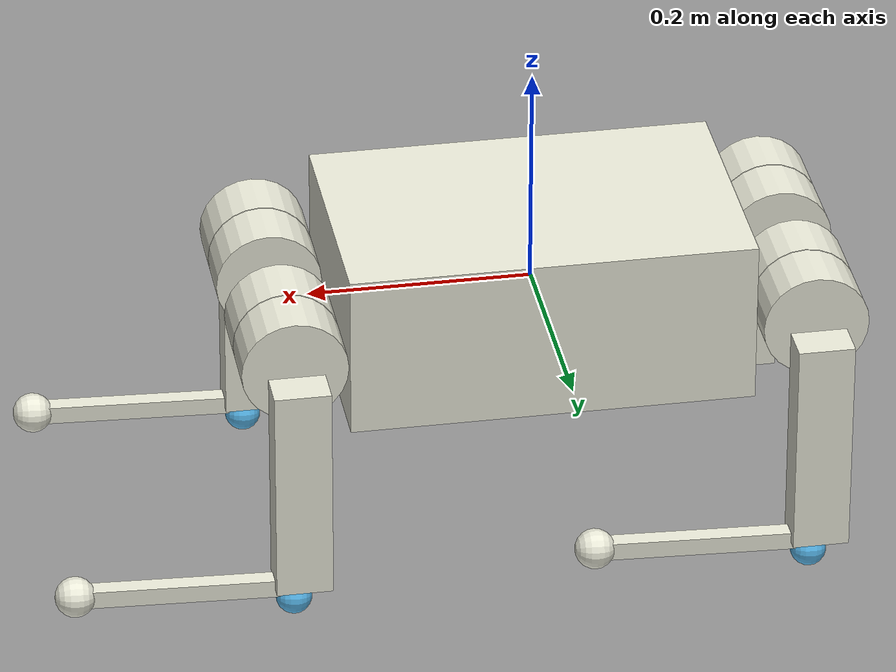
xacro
<?xml version="1.0"?>
<robot name="cyberdog_description" xmlns:xacro="http://www.ros.org/wiki/xacro">

    <xacro:arg name="ROBOT" default="cyberdog_description" />
    <xacro:arg name="USE_LIDAR" default="false" />
    <xacro:include filename="const.xacro" />
    <xacro:include filename="leg.xacro" />
    <xacro:include filename="gazebo.xacro" />

    <material name="black">
        <color rgba="0.0 0.0 0.0 1.0"/>
    </material>
    <material name="blue">
        <color rgba="0.0 0.0 0.8 1.0"/>
    </material>
    <material name="green">
        <color rgba="0.0 0.8 0.0 1.0"/>
    </material>
    <material name="grey">
        <color rgba="0.2 0.2 0.2 1.0"/>
    </material>
    <material name="silver">
        <color rgba="0.913725490196 0.913725490196 0.847058823529 1.0"/>
    </material>
    <material name="orange">
        <color rgba="0.12 0.15 0.2 1.0"/>
    </material>
    <material name="brown">
        <color rgba="0.870588235294 0.811764705882 0.764705882353 1.0"/>
    </material>
    <material name="red">
        <color rgba="0.8 0.0 0.0 1.0"/>
    </material>
    <material name="white">
        <color rgba="1.0 1.0 1.0 1.0"/>
    </material>

    <link name="base">
        <visual>
            <origin rpy="0 0 0" xyz="0 0 0" />
            <geometry>
                <box size="0.001 0.001 0.001" />
            </geometry>
        </visual>
    </link>

    <joint name="floating_base" type="fixed">
        <origin rpy="0 0 0" xyz="0 0 0" />
        <parent link="base" />
        <child link="trunk" />
    </joint>

    <link name="trunk">
        <visual>
            <origin rpy="0 0 0" xyz="0 0 0" />
            <geometry>
                <box size="${body_length} ${body_width} ${body_height}" />
            </geometry>
            <material name="silver" />
        </visual>
        <collision>
            <origin rpy="0 0 0" xyz="0 0 0" />
            <geometry>
                <box size="${body_length} ${body_width} ${body_height}" />
            </geometry>
        </collision>
        <inertial>
            <origin rpy="0 0 0" xyz="${body_com_x} ${body_com_y} ${body_com_z}" />
            <mass value="${body_mass}" />
            <inertia ixx="${body_ixx}" ixy="${body_ixy}" ixz="${body_ixz}" iyy="${body_iyy}" iyz="${body_iyz}" izz="${body_izz}" />
        </inertial>
    </link>

    <joint name="imu_joint" type="fixed">
        <parent link="trunk" />
        <child link="imu_link" />
        <origin rpy="0 0 0" xyz="0 0 0" />
    </joint>

    <link name="imu_link">
        <inertial>
            <mass value="0.001" />
            <origin rpy="0 0 0" xyz="0 0 0" />
            <inertia ixx="0.0001" ixy="0" ixz="0" iyy="0.0001" iyz="0" izz="0.0001" />
        </inertial>
        <visual>
            <origin rpy="0 0 0" xyz="0 0 0" />
            <geometry>
                <box size="0.001 0.001 0.001" />
            </geometry>
            <material name="red"/>
        </visual>
    </link>

    <xacro:leg name="FR" mirror="-1" mirror_dae="False" front_hind="1" front_hind_dae="True">
        <origin rpy="0 0 0" xyz="${abad_offset_x} ${-abad_offset_y} 0" />
    </xacro:leg>

    <xacro:leg name="FL" mirror="1" mirror_dae="True" front_hind="1" front_hind_dae="True">
        <origin rpy="0 0 0" xyz="${abad_offset_x} ${abad_offset_y} 0" />
    </xacro:leg>

    <xacro:leg name="RR" mirror="-1" mirror_dae="False" front_hind="-1" front_hind_dae="False">
        <origin rpy="0 0 0" xyz="${-abad_offset_x} ${-abad_offset_y} 0" />
    </xacro:leg>

    <xacro:leg name="RL" mirror="1" mirror_dae="True" front_hind="-1" front_hind_dae="False">
        <origin rpy="0 0 0" xyz="${-abad_offset_x} ${abad_offset_y} 0" />
    </xacro:leg>

</robot>

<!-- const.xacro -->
<robot xmlns:xacro="http://www.ros.org/wiki/xacro">

    <xacro:property name="PI" value="3.1415926535897931" />

    <!-- dimension -->
    <!-- body -->
    <xacro:property name="body_width" value="0.23" />
    <xacro:property name="body_length" value="0.36" />
    <xacro:property name="body_height" value="0.15" />

    <!-- abad -->
    <xacro:property name="abad_radius" value="0.047" />
    <xacro:property name="abad_length" value="0.052" />
    <xacro:property name="abad_offset_x" value="0.23035" />
    <xacro:property name="abad_offset_y" value="0.05" />
    <xacro:property name="abad_rotor_offset" value="0.0832504" />
    <xacro:property name="abad_max" value="0.76096355387" />
    <xacro:property name="abad_min" value="-0.76096355387" />

    <!-- hip -->
    <xacro:property name="hip_shoulder_radius" value="0.047" />
    <xacro:property name="hip_shoulder_length" value="0.052" />
    <xacro:property name="hip_width" value="0.035" />
    <xacro:property name="hip_height" value="0.050" />
    <xacro:property name="hip_offset" value="0.105076" />
    <xacro:property name="hip_length" value="0.2" />
    <xacro:property name="hip_rotor_offset" value="-0.107226" />
    <xacro:property name="hip_f_max" value="3.76991118431" />
    <xacro:property name="hip_f_min" value="-1.88495559215" />
    <xacro:property name="hip_h_max" value="3.76991118431" />
    <xacro:property name="hip_h_min" value="-1.88495559215" />

    <!-- knee -->
    <xacro:property name="knee_width" value="0.016" />
    <xacro:property name="knee_height" value="0.016" />
    <xacro:property name="knee_length" value="0.209" />
    <xacro:property name="knee_rotor_offset" value="-0.0426259" />
    <xacro:property name="knee_max" value="-0.717155789644" />
    <xacro:property name="knee_min" value="-2.49582083035" />
    <xacro:property name="knee_rubber" value="0.025" />

    <!-- foot -->
    <xacro:property name="foot_radius" value="0.018" />

    <!-- acuator atribute -->
    <xacro:property name="abadGearRatio" value="1" />
    <xacro:property name="hipGearRatio" value="1" />
    <xacro:property name="kneeGearRatio" value="1" />
    <xacro:property name="abad_motorTauMax" value="24" />
    <xacro:property name="hip_motorTauMax" value="24" />
    <xacro:property name="knee_motorTauMax" value="24" />
    <xacro:property name="abad_motorVelMax" value="31" />
    <xacro:property name="hip_motorVelMax" value="31" />
    <xacro:property name="knee_motorVelMax" value="31" />
    <xacro:property name="abad_damping" value="0" />
    <xacro:property name="hip_damping" value="0" />
    <xacro:property name="knee_damping" value="0" />
    <xacro:property name="abad_friction" value="0" />
    <xacro:property name="hip_friction" value="0" />
    <xacro:property name="knee_friction" value="0" />

    <!-- inertial&mass value -->
    <!-- body -->
    <xacro:property name="body_mass" value="6.248410872" />
    <xacro:property name="body_com_x" value="0.018785003" />
    <xacro:property name="body_com_y" value="0.003291012" />
    <xacro:property name="body_com_z" value="-0.000925646" />
    <xacro:property name="body_ixx" value="0.032143039" />
    <xacro:property name="body_ixy" value="-0.000268204" />
    <xacro:property name="body_ixz" value="-0.00241341" />
    <xacro:property name="body_iyy" value="0.13578316" />
    <xacro:property name="body_iyz" value="0.000080244" />
    <xacro:property name="body_izz" value="0.14828095" />

    <!-- abad -->
    <xacro:property name="abad_mass" value="0.537806728" />
    <xacro:property name="abad_com_x" value="-0.001597914" />
    <xacro:property name="abad_com_y" value="0.001680938" />
    <xacro:property name="abad_com_z" value="0.000002253" />
    <xacro:property name="abad_ixx" value="0.000403612" />
    <xacro:property name="abad_ixy" value="-0.000009337" />
    <xacro:property name="abad_ixz" value="0.000000536" />
    <xacro:property name="abad_iyy" value="0.000600779" />
    <xacro:property name="abad_iyz" value="-0.000000063" />
    <xacro:property name="abad_izz" value="0.000417249" />

    <!-- hip -->
    <xacro:property name="hip_mass" value="0.950266218" />
    <xacro:property name="hip_com_x" value="-0.003205778" />
    <xacro:property name="hip_com_y" value="-0.027811623" />
    <xacro:property name="hip_com_z" value="-0.027767048" />
    <xacro:property name="hip_ixx" value="0.004811898" />
    <xacro:property name="hip_ixy" value="0.000093647" />
    <xacro:property name="hip_ixz" value="-0.000208709" />
    <xacro:property name="hip_iyy" value="0.004752366" />
    <xacro:property name="hip_iyz" value="0.000813258" />
    <xacro:property name="hip_izz" value="0.001079691" />

    <!-- knee -->
    <xacro:property name="knee_mass" value="0.1135916" />
    <xacro:property name="knee_com_x" value="0.007372358" />
    <xacro:property name="knee_com_y" value="0.000122423" />
    <xacro:property name="knee_com_z" value="-0.10769301" />
    <xacro:property name="knee_ixx" value="0.000667971" />
    <xacro:property name="knee_ixy" value="-0.000000001" />
    <xacro:property name="knee_ixz" value="0.000005356" />
    <xacro:property name="knee_iyy" value="0.000674399" />
    <xacro:property name="knee_iyz" value="-0.000000015" />
    <xacro:property name="knee_izz" value="0.000014181" />

    <!-- rotor -->
    <xacro:property name="rotor_mass" value="0.076506382" />
    <xacro:property name="rotor_com_x" value="0" />
    <xacro:property name="rotor_com_y" value="0" />
    <xacro:property name="rotor_com_z" value="0" />
    <xacro:property name="rotor_ixx" value="0.000045843" />
    <xacro:property name="rotor_ixy" value="0" />
    <xacro:property name="rotor_ixz" value="0" />
    <xacro:property name="rotor_iyy" value="0.000045871" />
    <xacro:property name="rotor_iyz" value="0" />
    <xacro:property name="rotor_izz" value="0.000089031" />
</robot>

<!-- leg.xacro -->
<robot xmlns:xacro="http://www.ros.org/wiki/xacro">

    <xacro:include filename="../xacro/transmission.xacro" />

    <xacro:macro name="leg" params="name mirror mirror_dae front_hind front_hind_dae *origin">

        <joint name="${name}_hip_joint" type="revolute">
            <xacro:insert_block name="origin" />
            <parent link="trunk" />
            <child link="${name}_hip" />
            <axis xyz="1 0 0" />
            <dynamics damping="${abad_damping}" friction="${abad_friction}" />
            <xacro:if value="${(mirror_dae == True)}">
                <limit effort="${abad_motorTauMax*abadGearRatio}"
                    velocity="${abad_motorVelMax}" lower="${abad_min}"
                    upper="${abad_max}" />
            </xacro:if>
            <xacro:if value="${(mirror_dae == False)}">
                <limit effort="${abad_motorTauMax*abadGearRatio}"
                    velocity="${abad_motorVelMax}" lower="${-abad_max}"
                    upper="${-abad_min}" />
            </xacro:if>
        </joint>

        <link name="${name}_hip">
            <visual>
                <origin rpy="${PI/2.0} 0 0" xyz="0 0 0" />
                <geometry>
                    <cylinder length="${abad_length}" radius="${abad_radius}" />
                </geometry>
                <material name="silver" />
            </visual>
            <collision>
                <origin rpy="${PI/2.0} 0 0" xyz="0 0 0" />
                <geometry>
                    <cylinder length="${abad_length}" radius="${abad_radius}" />
                </geometry>
            </collision>
            <inertial>
                <origin rpy="0 0 0"
                    xyz="${abad_com_x*front_hind} ${abad_com_y*mirror} ${abad_com_z}" />
                <mass value="${abad_mass}" />
                <inertia ixx="${abad_ixx}" ixy="${abad_ixy*mirror*front_hind}"
                    ixz="${abad_ixz*front_hind}" iyy="${abad_iyy}" iyz="${abad_iyz*mirror}"
                    izz="${abad_izz}" />
            </inertial>
        </link>

        <joint name="${name}_hip_rotor_fix" type="fixed" dont_collapse="true">
            <origin rpy="0 0 0" xyz="${-abad_rotor_offset*front_hind} 0 0" />
            <parent link="${name}_hip" />
            <child link="${name}_hip_rotor" />
        </joint>

        <!-- this link is only for abad rotor inertial -->
        <link name="${name}_hip_rotor">
            <inertial>
                <origin rpy="0 0 0" xyz="${rotor_com_x} ${rotor_com_y} ${rotor_com_z}" />
                <mass value="${rotor_mass}" />
                <inertia ixx="${rotor_ixx}" ixy="${rotor_ixy}" ixz="${rotor_ixz}" iyy="${rotor_iyy}" iyz="${rotor_iyz}" izz="${rotor_izz}" />
            </inertial>
        </link>

        <joint name="${name}_hip_fixed" type="fixed">
            <origin rpy="0 0 0" xyz="0 ${(hip_offset-hip_shoulder_length)*mirror} 0" />
            <parent link="${name}_hip" />
            <child link="${name}_thigh_shoulder" />
        </joint>

        <link name="${name}_thigh_shoulder">
            <visual>
                <origin rpy="${PI/2.0} 0 0" xyz="0 0 0" />
                <geometry>
                    <cylinder length="${hip_shoulder_length}" radius="${hip_shoulder_radius}" />
                </geometry>
                <material name="silver" />
            </visual>
            <collision>
                <origin rpy="${PI/2.0} 0 0" xyz="0 0 0" />
                <geometry>
                    <cylinder length="${hip_shoulder_length}" radius="${hip_shoulder_radius}" />
                </geometry>
            </collision>
        </link>

        <joint name="${name}_thigh_joint" type="revolute">
            <origin rpy="0 0 0" xyz="0 ${hip_offset*mirror} 0" />
            <parent link="${name}_hip" />
            <child link="${name}_thigh" />
            <axis xyz="0 1 0" />
            <dynamics damping="${hip_damping}" friction="${hip_friction}" />
            <xacro:if value="${front_hind_dae == True}">
                <limit effort="${hip_motorTauMax*hipGearRatio}"
                    velocity="${hip_motorVelMax}" lower="${hip_f_min}"
                    upper="${hip_f_max}" />
            </xacro:if>
            <xacro:if value="${front_hind_dae == False}">
                <limit effort="${hip_motorTauMax*hipGearRatio}"
                    velocity="${hip_motorVelMax}" lower="${hip_h_min}"
                    upper="${hip_h_max}" />
            </xacro:if>
        </joint>

        <link name="${name}_thigh">
            <visual>
                <origin rpy="0 ${PI/2.0} 0" xyz="0 0 ${-hip_length/2.0}" />
                <geometry>
                    <box size="${hip_length} ${hip_width} ${hip_height}" />
                </geometry>
                <material name="silver" />
            </visual>
            <collision>
                <origin rpy="0 ${PI/2.0} 0" xyz="0 0 ${-hip_length/2.0}" />
                <geometry>
                    <box size="${hip_length} ${hip_width} ${hip_height}" />
                </geometry>
            </collision>
            <inertial>
                <origin rpy="0 0 0" xyz="${hip_com_x} ${hip_com_y*mirror} ${hip_com_z}" />
                <mass value="${hip_mass}" />
                <inertia ixx="${hip_ixx}" ixy="${hip_ixy*mirror}" ixz="${hip_ixz}" iyy="${hip_iyy}"
                    iyz="${hip_iyz*mirror}" izz="${hip_izz}" />
            </inertial>
        </link>

        <joint name="${name}_thigh_rotor_fix" type="fixed" dont_collapse="true">
            <origin rpy="0 0 0" xyz="0 ${hip_rotor_offset*mirror} 0" />
            <parent link="${name}_thigh" />
            <child link="${name}_thigh_rotor" />
        </joint>

        <!-- this link is only for hip rotor inertial -->
        <link name="${name}_thigh_rotor">
            <inertial>
                <origin rpy="0 0 0" xyz="${rotor_com_x} ${rotor_com_y} ${rotor_com_z}" />
                <mass value="${rotor_mass}" />
                <inertia ixx="${rotor_ixx}" ixy="${rotor_ixy}" ixz="${rotor_ixz}" iyy="${rotor_iyy}" iyz="${rotor_iyz}" izz="${rotor_izz}" />
            </inertial>
        </link>

        <joint name="${name}_calf_rotor_fix" type="fixed" dont_collapse="true">
            <origin rpy="0 0 0" xyz="0 ${knee_rotor_offset*mirror} 0" />
            <parent link="${name}_thigh" />
            <child link="${name}_calf_rotor" />
        </joint>

        <!-- this link is only for knee rotor inertial -->
        <link name="${name}_calf_rotor">
            <inertial>
                <origin rpy="0 0 0" xyz="${rotor_com_x} ${rotor_com_y} ${rotor_com_z}" />
                <mass value="${rotor_mass}" />
                <inertia ixx="${rotor_ixx}" ixy="${rotor_ixy}" ixz="${rotor_ixz}" iyy="${rotor_iyy}" iyz="${rotor_iyz}" izz="${rotor_izz}" />
            </inertial>
        </link>

        <joint name="${name}_calf_joint" type="revolute">
            <origin rpy="0 0 0" xyz="0 0 ${-hip_length}" />
            <parent link="${name}_thigh" />
            <child link="${name}_calf" />
            <axis xyz="0 1 0" />
            <dynamics damping="${hip_damping}" friction="${hip_friction}" />
            <limit effort="${knee_motorTauMax*kneeGearRatio}"
                velocity="${knee_motorVelMax}" lower="${knee_min}"
                upper="${knee_max}" />
        </joint>

        <link name="${name}_calf">
            <visual>
                <origin rpy="0 ${PI} 0" xyz="0 0 ${-knee_length/2.0}" />
                <geometry>
                    <box size="${knee_height} ${knee_width} ${knee_length}" />
                </geometry>
                <material name="silver" />
            </visual>
            <visual name="${name}_calf_rubber">
                <origin rpy="0 ${PI} 0" xyz="${-knee_rubber/2.0} 0 -0.007" />
                <geometry>
                    <sphere radius="0.016" />
                </geometry>
            </visual>
            <collision>
                <origin rpy="0 ${PI} 0" xyz="0 0 ${-knee_length/2.0}" />
                <geometry>
                    <box size="${knee_height} ${knee_width} ${knee_length}" />
                </geometry>
            </collision>
            <collision name="${name}_calf_rubber">
                <origin rpy="0 ${PI} 0" xyz="${-knee_rubber/2.0} 0 -0.007" />
                <geometry>
                    <sphere radius="0.016" />
                </geometry>
                <surface>
                    <contact>
                        <ode>
                            <max_vel>0.00001</max_vel>
                            <min_depth>0.0</min_depth>
                        </ode>
                    </contact>
                </surface>
            </collision>
            <inertial>
                <origin rpy="0 0 0" xyz="${knee_com_x} ${knee_com_y} ${knee_com_z}" />
                <mass value="${knee_mass}" />
                <inertia ixx="${knee_ixx}" ixy="${knee_ixy}" ixz="${knee_ixz}" iyy="${knee_iyy}"
                    iyz="${knee_iyz}" izz="${knee_izz}" />
            </inertial>
        </link>

        <joint name="${name}_foot_fixed" type="fixed" dont_collapse="true">
            <origin rpy="0 0 0" xyz="0 0 ${-knee_length+foot_radius/2.0}" />
            <parent link="${name}_calf" />
            <child link="${name}_foot" />
        </joint>

        <link name="${name}_foot">
            <visual>
                <origin rpy="0 0 0" xyz="0 0 0" />
                <geometry>
                    <sphere radius="${foot_radius}" />
                </geometry>
                <material name="silver" />
            </visual>
            <collision>
                <origin rpy="0 0 0" xyz="0 0 0" />
                <geometry>
                    <sphere radius="${foot_radius}" />
                </geometry>
                <surface>
                    <contact>
                        <ode>
                            <max_vel>0.001</max_vel>
                            <min_depth>0.0</min_depth>
                        </ode>
                    </contact>
                </surface>
            </collision>
        </link>

        <xacro:leg_transmission name="${name}" />
    </xacro:macro>
</robot>
